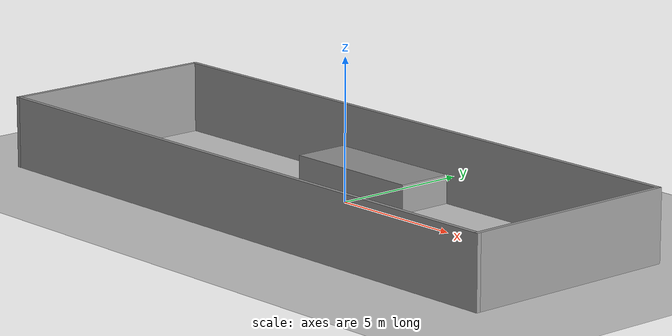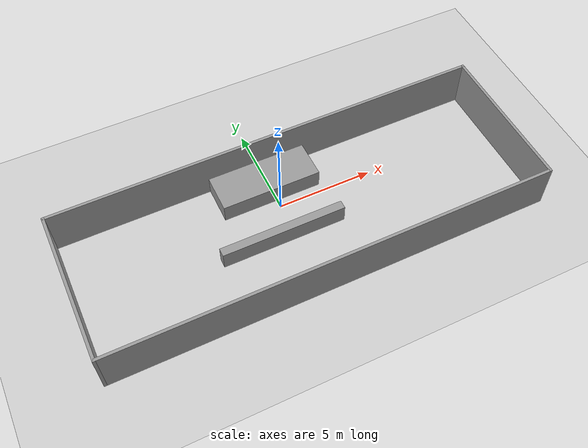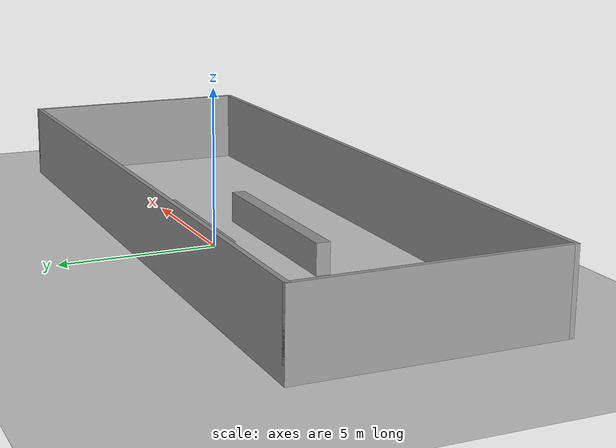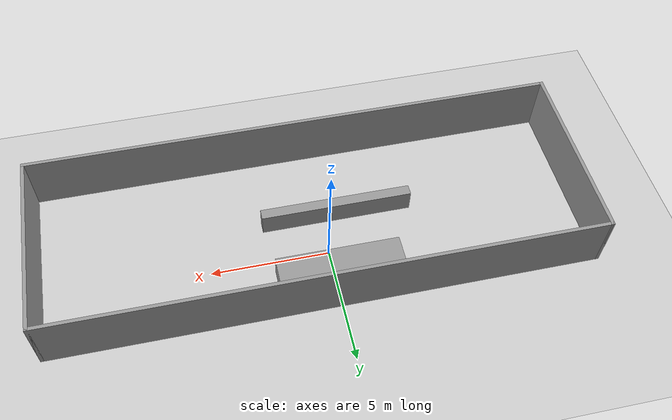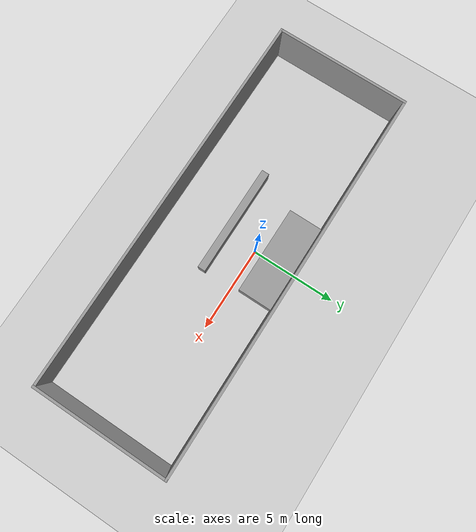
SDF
<sdf version="1.6">
 <world name="default">
  <light name="sun" type="directional">
   <pose>0 0 10 0 -0 0</pose>
   <diffuse>0.8 0.8 0.8 1</diffuse>
   <specular>0.2 0.2 0.2 1</specular>
   <attenuation>
    <range>1000</range>
    <constant>0.9</constant>
    <linear>0.01</linear>
    <quadratic>0.001</quadratic>
   </attenuation>
   <direction>-0.5 0.1 -0.9</direction>
  </light>
  <model name="ground_plane">
   <static>1</static>
   <link name="link">
    <collision name="collision">
     <geometry><plane><normal>0 0 1</normal><size>100 100</size></plane></geometry>
     <surface>
      <contact><collide_bitmask>65535</collide_bitmask></contact>
      <friction><ode><mu>100</mu><mu2>50</mu2></ode></friction>
     </surface>
    </collision>
    <visual name="visual">
     <cast_shadows>0</cast_shadows>
     <geometry><plane><normal>0 0 1</normal><size>100 100</size></plane></geometry>
     <material>
      <script><uri>file://media/materials/scripts/gazebo.material</uri><name>Gazebo/Grey</name></script>
     </material>
    </visual>
   </link>
  </model>
  <gravity>0 0 -9.8</gravity>
  <magnetic_field>6e-06 2.3e-05 -4.2e-05</magnetic_field>
  <atmosphere type="adiabatic"/>
  <physics name="default_physics" default="0" type="ode">
   <max_step_size>0.001</max_step_size>
   <real_time_factor>1</real_time_factor>
   <real_time_update_rate>1000</real_time_update_rate>
  </physics>
  <scene><ambient>0.4 0.4 0.4 1</ambient><background>0.7 0.7 0.7 1</background><shadows>1</shadows></scene>
  <audio><device>default</device></audio>
  <spherical_coordinates>
   <surface_model>EARTH_WGS84</surface_model>
   <latitude_deg>0</latitude_deg>
   <longitude_deg>0</longitude_deg>
   <elevation>0</elevation>
   <heading_deg>0</heading_deg>
  </spherical_coordinates>
  <model name="unit_box">
   <link name="link">
    <inertial>
     <mass>1</mass>
     <inertia>
      <ixx>0.166667</ixx>
      <ixy>0</ixy>
      <ixz>0</ixz>
      <iyy>0.166667</iyy>
      <iyz>0</iyz>
      <izz>0.166667</izz>
     </inertia>
    </inertial>
    <pose>0 3 -0 0 -0 0</pose>
    <visual name="visual">
     <geometry><box><size>5.2 2 1</size></box></geometry>
     <material>
      <script><name>Gazebo/Grey</name><uri>file://media/materials/scripts/gazebo.material</uri></script>
      <shader type="vertex"><normal_map>__default__</normal_map></shader>
      <ambient>0.3 0.3 0.3 1</ambient>
      <diffuse>0.7 0.7 0.7 1</diffuse>
      <specular>0.01 0.01 0.01 1</specular>
      <emissive>0 0 0 1</emissive>
     </material>
    </visual>
    <collision name="collision">
     <geometry><box><size>1 1 1</size></box></geometry>
     <surface>
      <friction>
       <ode><mu>1</mu><mu2>1</mu2><fdir1>0 0 0</fdir1><slip1>0</slip1><slip2>0</slip2></ode>
       <torsional>
        <coefficient>1</coefficient>
        <patch_radius>0</patch_radius>
        <surface_radius>0</surface_radius>
        <use_patch_radius>1</use_patch_radius>
        <ode><slip>0</slip></ode>
       </torsional>
      </friction>
      <bounce><restitution_coefficient>0</restitution_coefficient><threshold>1e+06</threshold></bounce>
      <contact>
       <collide_without_contact>0</collide_without_contact>
       <collide_without_contact_bitmask>1</collide_without_contact_bitmask>
       <collide_bitmask>1</collide_bitmask>
       <ode>
        <soft_cfm>0</soft_cfm>
        <soft_erp>0.2</soft_erp>
        <kp>1e+13</kp>
        <kd>1</kd>
        <max_vel>0.01</max_vel>
        <min_depth>0</min_depth>
       </ode>
       <bullet>
        <split_impulse>1</split_impulse>
        <split_impulse_penetration_threshold>-0.01</split_impulse_penetration_threshold>
        <soft_cfm>0</soft_cfm>
        <soft_erp>0.2</soft_erp>
        <kp>1e+13</kp>
        <kd>1</kd>
       </bullet>
      </contact>
     </surface>
    </collision>
   </link>
   <static>0</static>
   <pose>-0.239793 -1.55906 0.499995 -1e-05 0 0</pose>
  </model>
  <model name="unit_box_1">
   <link name="link">
    <inertial>
     <mass>1</mass>
     <inertia>
      <ixx>0.166667</ixx>
      <ixy>0</ixy>
      <ixz>0</ixz>
      <iyy>0.166667</iyy>
      <iyz>0</iyz>
      <izz>0.166667</izz>
     </inertia>
    </inertial>
    <pose>0 3 0 0 -0 0</pose>
    <visual name="visual">
     <geometry><box><size>6.45916 0.45 1</size></box></geometry>
     <material>
      <script><name>Gazebo/Grey</name><uri>file://media/materials/scripts/gazebo.material</uri></script>
      <shader type="vertex"><normal_map>__default__</normal_map></shader>
      <ambient>0.3 0.3 0.3 1</ambient>
      <diffuse>0.7 0.7 0.7 1</diffuse>
      <specular>0.01 0.01 0.01 1</specular>
      <emissive>0 0 0 1</emissive>
     </material>
    </visual>
    <collision name="collision">
     <geometry><box><size>0.922737 1 1</size></box></geometry>
     <surface>
      <friction>
       <ode><mu>1</mu><mu2>1</mu2><fdir1>0 0 0</fdir1><slip1>0</slip1><slip2>0</slip2></ode>
       <torsional>
        <coefficient>1</coefficient>
        <patch_radius>0</patch_radius>
        <surface_radius>0</surface_radius>
        <use_patch_radius>1</use_patch_radius>
        <ode><slip>0</slip></ode>
       </torsional>
      </friction>
      <bounce><restitution_coefficient>0</restitution_coefficient><threshold>1e+06</threshold></bounce>
      <contact>
       <collide_without_contact>0</collide_without_contact>
       <collide_without_contact_bitmask>1</collide_without_contact_bitmask>
       <collide_bitmask>1</collide_bitmask>
       <ode>
        <soft_cfm>0</soft_cfm>
        <soft_erp>0.2</soft_erp>
        <kp>1e+13</kp>
        <kd>1</kd>
        <max_vel>0.01</max_vel>
        <min_depth>0</min_depth>
       </ode>
       <bullet>
        <split_impulse>1</split_impulse>
        <split_impulse_penetration_threshold>-0.01</split_impulse_penetration_threshold>
        <soft_cfm>0</soft_cfm>
        <soft_erp>0.2</soft_erp>
        <kp>1e+13</kp>
        <kd>1</kd>
       </bullet>
      </contact>
     </surface>
    </collision>
   </link>
   <static>0</static>
   <pose>-0.707867 -4.85176 0.5 0 -0 0</pose>
  </model>
  <model name="Untitled">
   <link name="Wall_0">
    <pose>0 6.925 0 0 -0 0</pose>
    <inertial>
     <mass>1</mass>
     <inertia><ixx>1</ixx><ixy>0</ixy><ixz>0</ixz><iyy>1</iyy><iyz>5</iyz><izz>1</izz></inertia>
    </inertial>
    <visual name="Wall_0_Visual">
     <pose>0 0 1.25 0 -0 0</pose>
     <geometry><box><size>23 0.15 2.5</size></box></geometry>
     <material>
      <script><uri>file://media/materials/scripts/gazebo.material</uri><name>Gazebo/Grey</name></script>
      <ambient>1 1 1 1</ambient>
      <shader type="vertex"><normal_map>__default__</normal_map></shader>
      <diffuse>0.7 0.7 0.7 1</diffuse>
      <specular>0.01 0.01 0.01 1</specular>
      <emissive>0 0 0 1</emissive>
     </material>
     <meta><layer>0</layer></meta>
    </visual>
    <collision name="Wall_0_Collision">
     <pose>0 0 1.25 0 -0 0</pose>
     <geometry><box><size>23 0.15 2.5</size></box></geometry>
     <surface>
      <friction>
       <ode><mu>1</mu><mu2>1</mu2><fdir1>0 0 0</fdir1><slip1>0</slip1><slip2>0</slip2></ode>
       <torsional>
        <coefficient>1</coefficient>
        <patch_radius>0</patch_radius>
        <surface_radius>0</surface_radius>
        <use_patch_radius>1</use_patch_radius>
        <ode><slip>0</slip></ode>
       </torsional>
      </friction>
      <bounce><restitution_coefficient>0</restitution_coefficient><threshold>1e+06</threshold></bounce>
      <contact>
       <collide_without_contact>0</collide_without_contact>
       <collide_without_contact_bitmask>1</collide_without_contact_bitmask>
       <collide_bitmask>1</collide_bitmask>
       <ode>
        <soft_cfm>0</soft_cfm>
        <soft_erp>0.2</soft_erp>
        <kp>1e+13</kp>
        <kd>1</kd>
        <max_vel>0.01</max_vel>
        <min_depth>0</min_depth>
       </ode>
       <bullet>
        <split_impulse>1</split_impulse>
        <split_impulse_penetration_threshold>-0.01</split_impulse_penetration_threshold>
        <soft_cfm>0</soft_cfm>
        <soft_erp>0.2</soft_erp>
        <kp>1e+13</kp>
        <kd>1</kd>
       </bullet>
      </contact>
     </surface>
    </collision>
   </link>
   <link name="Wall_3">
    <pose>11.425 3 0 0 0 -1.5708</pose>
    <inertial>
     <mass>1</mass>
     <inertia><ixx>1</ixx><ixy>0</ixy><ixz>0</ixz><iyy>1</iyy><iyz>0</iyz><izz>1</izz></inertia>
    </inertial>
    <visual name="Wall_3_Visual">
     <pose>0 0 1.25 0 -0 0</pose>
     <geometry><box><size>8 0.15 2.5</size></box></geometry>
     <material>
      <script><uri>file://media/materials/scripts/gazebo.material</uri><name>Gazebo/Grey</name></script>
      <ambient>1 1 1 1</ambient>
      <shader type="vertex"><normal_map>__default__</normal_map></shader>
      <diffuse>0.7 0.7 0.7 1</diffuse>
      <specular>0.01 0.01 0.01 1</specular>
      <emissive>0 0 0 1</emissive>
     </material>
     <meta><layer>0</layer></meta>
    </visual>
    <collision name="Wall_3_Collision">
     <pose>0 0 1.25 0 -0 0</pose>
     <geometry><box><size>8 0.15 2.5</size></box></geometry>
     <surface>
      <friction>
       <ode><mu>1</mu><mu2>1</mu2><fdir1>0 0 0</fdir1><slip1>0</slip1><slip2>0</slip2></ode>
       <torsional>
        <coefficient>1</coefficient>
        <patch_radius>0</patch_radius>
        <surface_radius>0</surface_radius>
        <use_patch_radius>1</use_patch_radius>
        <ode><slip>0</slip></ode>
       </torsional>
      </friction>
      <bounce><restitution_coefficient>0</restitution_coefficient><threshold>1e+06</threshold></bounce>
      <contact>
       <collide_without_contact>0</collide_without_contact>
       <collide_without_contact_bitmask>1</collide_without_contact_bitmask>
       <collide_bitmask>1</collide_bitmask>
       <ode>
        <soft_cfm>0</soft_cfm>
        <soft_erp>0.2</soft_erp>
        <kp>1e+13</kp>
        <kd>1</kd>
        <max_vel>0.01</max_vel>
        <min_depth>0</min_depth>
       </ode>
       <bullet>
        <split_impulse>1</split_impulse>
        <split_impulse_penetration_threshold>-0.01</split_impulse_penetration_threshold>
        <soft_cfm>0</soft_cfm>
        <soft_erp>0.2</soft_erp>
        <kp>1e+13</kp>
        <kd>1</kd>
       </bullet>
      </contact>
     </surface>
    </collision>
   </link>
   <link name="Wall_4">
    <pose>0 -0.925 0 0 -0 3.14159</pose>
    <inertial>
     <mass>1</mass>
     <inertia><ixx>1</ixx><ixy>0</ixy><ixz>0</ixz><iyy>1</iyy><iyz>0</iyz><izz>1</izz></inertia>
    </inertial>
    <visual name="Wall_4_Visual">
     <pose>0 0 1.25 0 -0 0</pose>
     <geometry><box><size>23 0.15 2.5</size></box></geometry>
     <material>
      <script><uri>file://media/materials/scripts/gazebo.material</uri><name>Gazebo/Grey</name></script>
      <ambient>1 1 1 1</ambient>
      <shader type="vertex"><normal_map>__default__</normal_map></shader>
      <diffuse>0.7 0.7 0.7 1</diffuse>
      <specular>0.01 0.01 0.01 1</specular>
      <emissive>0 0 0 1</emissive>
     </material>
     <meta><layer>0</layer></meta>
    </visual>
    <collision name="Wall_4_Collision">
     <pose>0 0 1.25 0 -0 0</pose>
     <geometry><box><size>23 0.15 2.5</size></box></geometry>
     <surface>
      <friction>
       <ode><mu>1</mu><mu2>1</mu2><fdir1>0 0 0</fdir1><slip1>0</slip1><slip2>0</slip2></ode>
       <torsional>
        <coefficient>1</coefficient>
        <patch_radius>0</patch_radius>
        <surface_radius>0</surface_radius>
        <use_patch_radius>1</use_patch_radius>
        <ode><slip>0</slip></ode>
       </torsional>
      </friction>
      <bounce><restitution_coefficient>0</restitution_coefficient><threshold>1e+06</threshold></bounce>
      <contact>
       <collide_without_contact>0</collide_without_contact>
       <collide_without_contact_bitmask>1</collide_without_contact_bitmask>
       <collide_bitmask>1</collide_bitmask>
       <ode>
        <soft_cfm>0</soft_cfm>
        <soft_erp>0.2</soft_erp>
        <kp>1e+13</kp>
        <kd>1</kd>
        <max_vel>0.01</max_vel>
        <min_depth>0</min_depth>
       </ode>
       <bullet>
        <split_impulse>1</split_impulse>
        <split_impulse_penetration_threshold>-0.01</split_impulse_penetration_threshold>
        <soft_cfm>0</soft_cfm>
        <soft_erp>0.2</soft_erp>
        <kp>1e+13</kp>
        <kd>1</kd>
       </bullet>
      </contact>
     </surface>
    </collision>
   </link>
   <link name="Wall_5">
    <pose>-11.425 3 0 0 -0 1.5708</pose>
    <inertial>
     <mass>1</mass>
     <inertia><ixx>1</ixx><ixy>0</ixy><ixz>0</ixz><iyy>1</iyy><iyz>1</iyz><izz>1</izz></inertia>
    </inertial>
    <visual name="Wall_5_Visual">
     <pose>0 0 1.25 0 -0 0</pose>
     <geometry><box><size>8 0.15 2.5</size></box></geometry>
     <material>
      <script><uri>file://media/materials/scripts/gazebo.material</uri><name>Gazebo/Grey</name></script>
      <ambient>1 1 1 1</ambient>
      <shader type="vertex"><normal_map>__default__</normal_map></shader>
      <diffuse>0.7 0.7 0.7 1</diffuse>
      <specular>0.01 0.01 0.01 1</specular>
      <emissive>0 0 0 1</emissive>
     </material>
     <meta><layer>0</layer></meta>
    </visual>
    <collision name="Wall_5_Collision">
     <pose>0 0 1.25 0 -0 0</pose>
     <geometry><box><size>8 0.15 2.5</size></box></geometry>
     <surface>
      <friction>
       <ode><mu>1</mu><mu2>1</mu2><fdir1>0 0 0</fdir1><slip1>0</slip1><slip2>0</slip2></ode>
       <torsional>
        <coefficient>1</coefficient>
        <patch_radius>0</patch_radius>
        <surface_radius>0</surface_radius>
        <use_patch_radius>1</use_patch_radius>
        <ode><slip>0</slip></ode>
       </torsional>
      </friction>
      <bounce><restitution_coefficient>0</restitution_coefficient><threshold>1e+06</threshold></bounce>
      <contact>
       <collide_without_contact>0</collide_without_contact>
       <collide_without_contact_bitmask>1</collide_without_contact_bitmask>
       <collide_bitmask>1</collide_bitmask>
       <ode>
        <soft_cfm>0</soft_cfm>
        <soft_erp>0.2</soft_erp>
        <kp>1e+13</kp>
        <kd>1</kd>
        <max_vel>0.01</max_vel>
        <min_depth>0</min_depth>
       </ode>
       <bullet>
        <split_impulse>1</split_impulse>
        <split_impulse_penetration_threshold>-0.01</split_impulse_penetration_threshold>
        <soft_cfm>0</soft_cfm>
        <soft_erp>0.2</soft_erp>
        <kp>1e+13</kp>
        <kd>1</kd>
       </bullet>
      </contact>
     </surface>
    </collision>
   </link>
   <static>1</static>
   <pose>0.509855 -4.41277 0 0 -0 0</pose>
  </model>
 </world>
</sdf>
